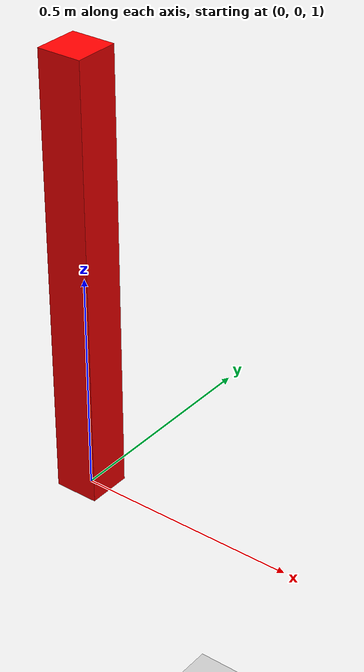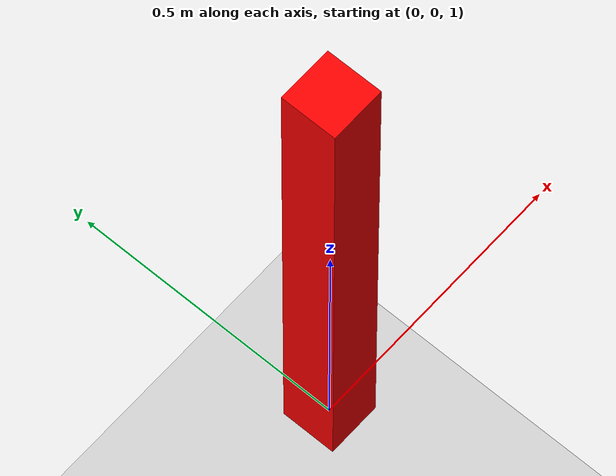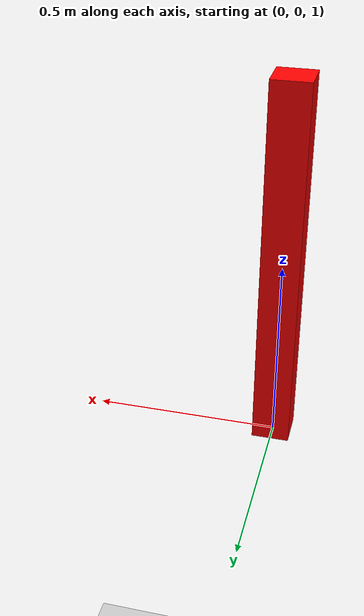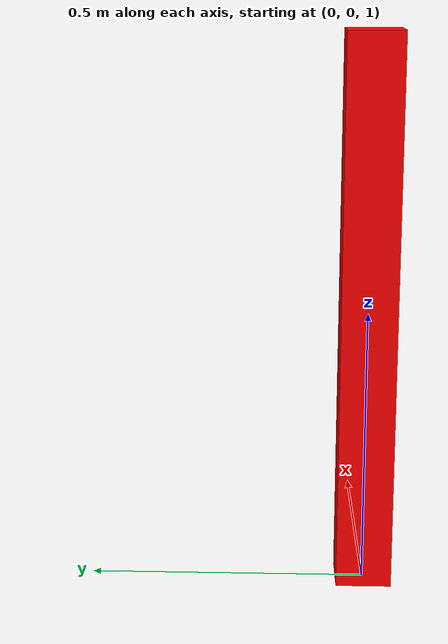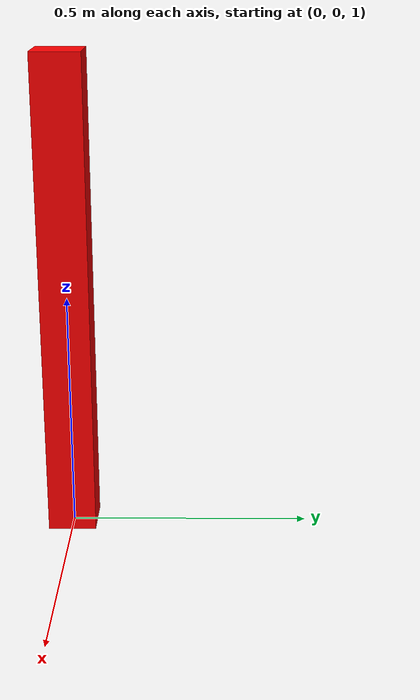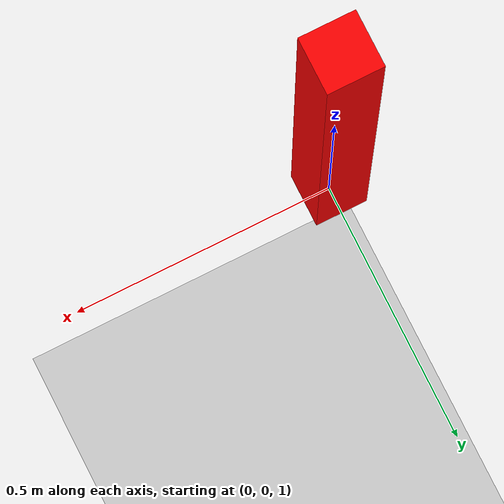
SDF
<?xml version="1.0" ?>
<sdf version="1.5">
  <world name="default">

    <!-- A global light source -->
    <include>
      <uri>model://sun</uri>
    </include>

    <!-- A ground plane -->
    <include>
      <uri>model://ground_plane</uri>
    </include>

    <include>
      <uri>model://pendulum_gz</uri>
    </include>

  </world>
</sdf>

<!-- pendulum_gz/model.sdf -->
<sdf version='1.4'>

    <model name="pendulum_gz">
        <pose>0 0 0 0 0 0</pose>
        <link name="link_00">
            <pose>0.0 0 1.5 0 0 0</pose>
            <collision name="collision_00">
                <geometry>
                    <box>
                        <size>.1 .1 1</size>
                    </box>
                </geometry>
            </collision>
            <visual name="visual_00">
                <geometry>
                    <box>
                        <size>.1 .1 1</size>
                    </box>
                </geometry>
                <material>
                    <ambient> 0 0 0 0 </ambient>
                    <diffuse> 1 0 0 1 </diffuse>
                    <specular> 0 0 0 0 </specular>
                    <emissive> 0.5 0 0 0.5 </emissive>
                </material>
            </visual>
        </link>

        <joint name="joint_00" type="revolute">
            <parent>world</parent>
            <child>link_00</child>
            <pose>0.0 0.0 0.5 0.0 0.0 0.0</pose>
            <axis>
                <xyz>1.0 0.0 0.0</xyz>
                <limit>
                    <velocity>6.2831853072</velocity>
                </limit>
            </axis>
        </joint>

        <plugin filename="/Users/Gary/pracsys/ML4KP-devel/lib/gazebo_plugins/libexecute_plan_plugin.so" name="execute_plan"/>

    </model>
</sdf>
